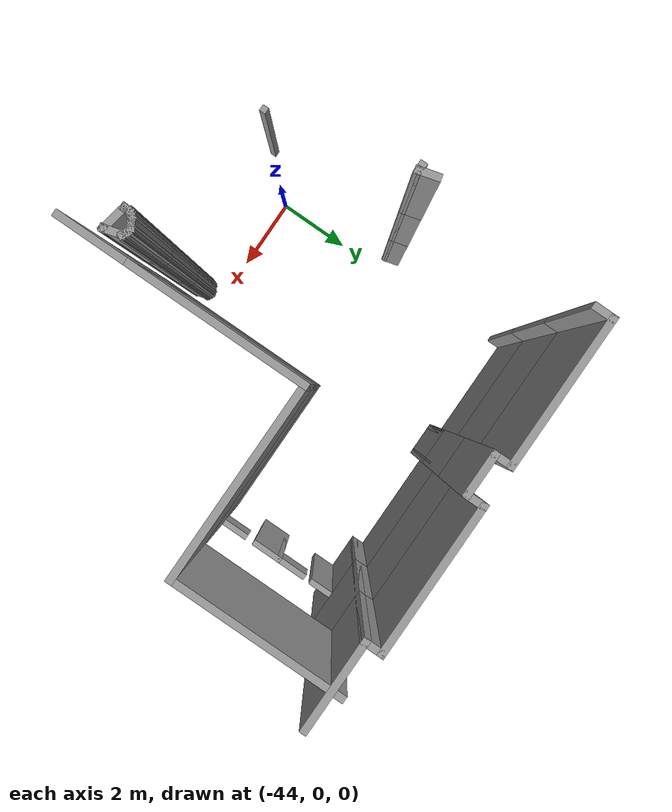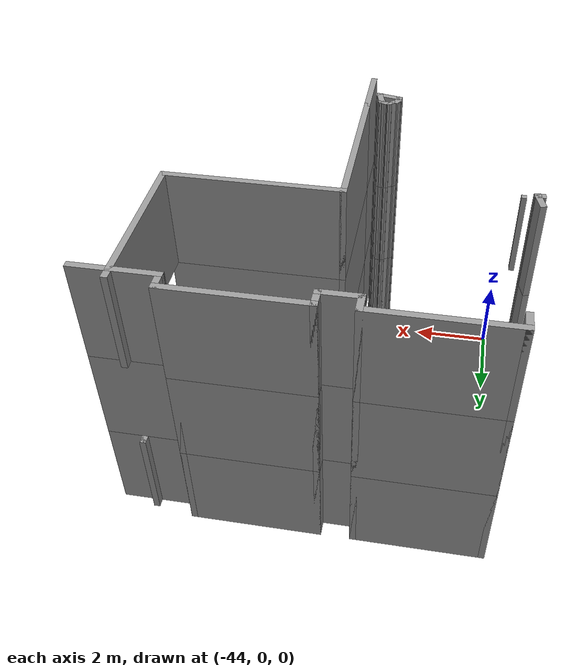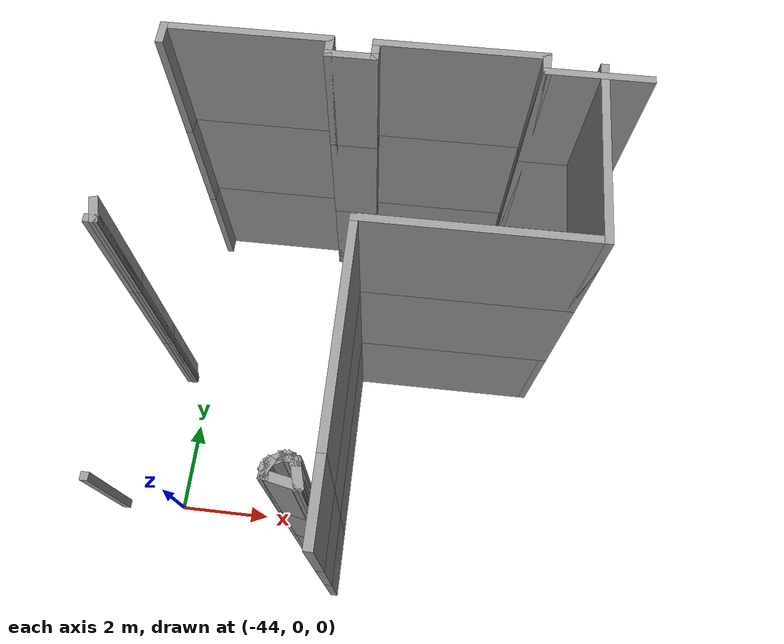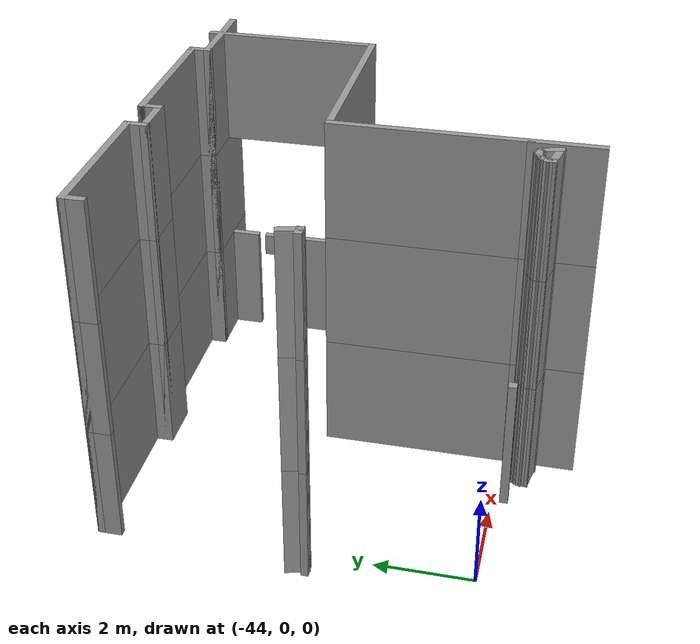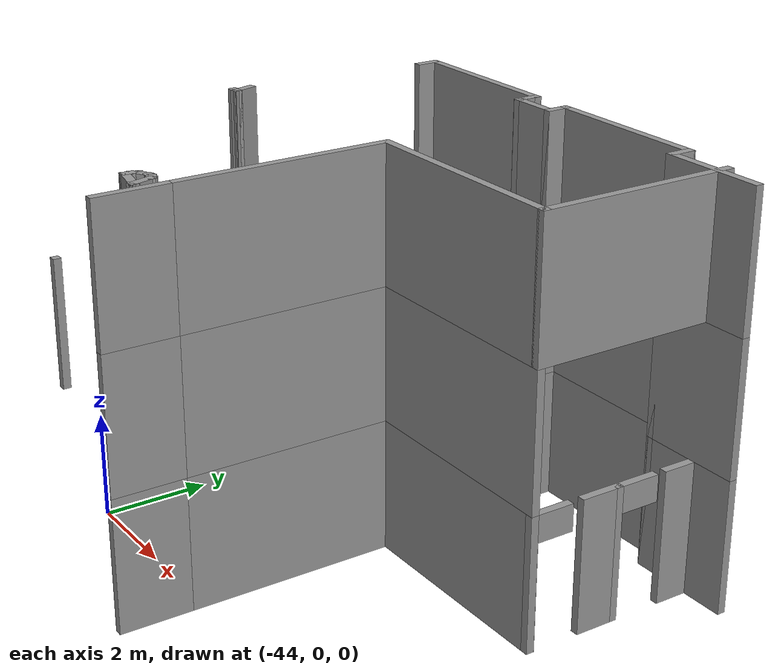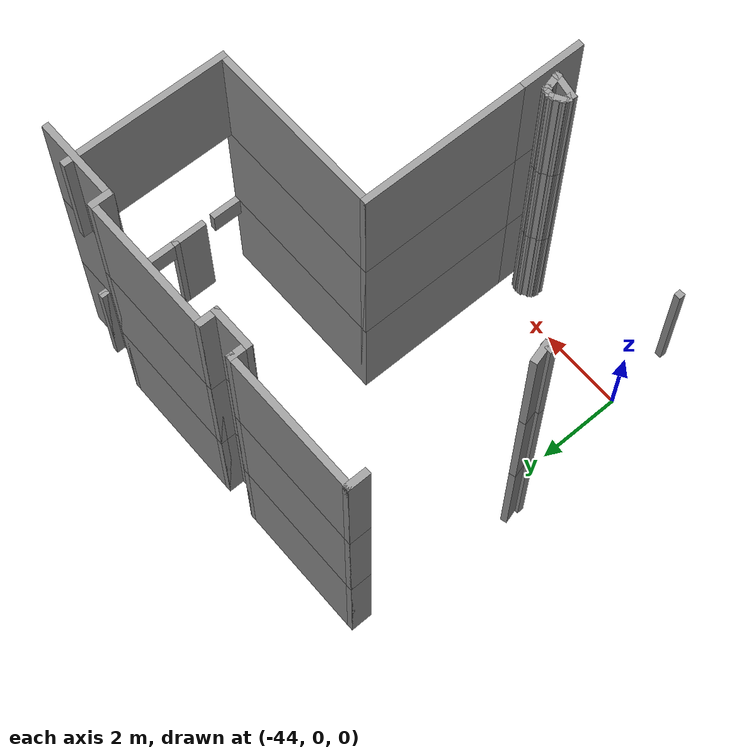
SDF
<sdf version="1.7">
 <model name="mapagazebo">
  <pose>-4.67869 9.01252 0 0 -0 0</pose>
  <link name="Wall_1006">
   <collision name="Wall_1006_Collision">
    <geometry><box><size>0.5 0.15 2.5</size></box></geometry>
    <pose>0 0 1.25 0 -0 0</pose>
   </collision>
   <visual name="Wall_1006_Visual">
    <pose>0 0 1.25 0 -0 0</pose>
    <geometry><box><size>0.5 0.15 2.5</size></box></geometry>
    <material>
     <script><uri>file://media/materials/scripts/gazebo.material</uri><name>Gazebo/Grey</name></script>
     <ambient>1 1 1 1</ambient>
    </material>
    <meta><layer>1</layer></meta>
   </visual>
   <pose>-39.7632 -5.62379 2.5 0 -0 -1.309</pose>
  </link>
  <link name="Wall_1007">
   <collision name="Wall_1007_Collision">
    <geometry><box><size>0.15 0.15 2.5</size></box></geometry>
    <pose>0 0 1.25 0 -0 0</pose>
   </collision>
   <visual name="Wall_1007_Visual">
    <pose>0 0 1.25 0 -0 0</pose>
    <geometry><box><size>0.15 0.15 2.5</size></box></geometry>
    <material>
     <script><uri>file://media/materials/scripts/gazebo.material</uri><name>Gazebo/Grey</name></script>
     <ambient>1 1 1 1</ambient>
    </material>
    <meta><layer>1</layer></meta>
   </visual>
   <pose>-39.7179 -5.79283 2.5 0 -0 0</pose>
  </link>
  <link name="Wall_1008">
   <collision name="Wall_1008_Collision">
    <geometry><box><size>0.25 0.15 2.5</size></box></geometry>
    <pose>0 0 1.25 0 -0 0</pose>
   </collision>
   <visual name="Wall_1008_Visual">
    <pose>0 0 1.25 0 -0 0</pose>
    <geometry><box><size>0.25 0.15 2.5</size></box></geometry>
    <material>
     <script><uri>file://media/materials/scripts/gazebo.material</uri><name>Gazebo/Grey</name></script>
     <ambient>1 1 1 1</ambient>
    </material>
    <meta><layer>1</layer></meta>
   </visual>
   <pose>-39.7679 -5.79283 2.5 0 -0 3.14159</pose>
  </link>
  <link name="Wall_1069">
   <collision name="Wall_1069_Collision">
    <geometry><box><size>0.25 0.15 2.5</size></box></geometry>
    <pose>0 0 1.25 0 -0 0</pose>
   </collision>
   <visual name="Wall_1069_Visual">
    <pose>0 0 1.25 0 -0 0</pose>
    <geometry><box><size>0.25 0.15 2.5</size></box></geometry>
    <material>
     <script><uri>file://media/materials/scripts/gazebo.material</uri><name>Gazebo/Grey</name></script>
     <ambient>1 1 1 1</ambient>
    </material>
    <meta><layer>1</layer></meta>
   </visual>
   <pose>-36.2911 -9.57059 2.5 0 -0 1.5708</pose>
  </link>
  <link name="Wall_1070">
   <collision name="Wall_1070_Collision">
    <geometry><box><size>0.25 0.15 2.5</size></box></geometry>
    <pose>0 0 1.25 0 -0 0</pose>
   </collision>
   <visual name="Wall_1070_Visual">
    <pose>0 0 1.25 0 -0 0</pose>
    <geometry><box><size>0.25 0.15 2.5</size></box></geometry>
    <material>
     <script><uri>file://media/materials/scripts/gazebo.material</uri><name>Gazebo/Grey</name></script>
     <ambient>1 1 1 1</ambient>
    </material>
    <meta><layer>1</layer></meta>
   </visual>
   <pose>-36.2661 -9.47729 2.5 0 -0 1.0472</pose>
  </link>
  <link name="Wall_1071">
   <collision name="Wall_1071_Collision">
    <geometry><box><size>0.25 0.15 2.5</size></box></geometry>
    <pose>0 0 1.25 0 -0 0</pose>
   </collision>
   <visual name="Wall_1071_Visual">
    <pose>0 0 1.25 0 -0 0</pose>
    <geometry><box><size>0.25 0.15 2.5</size></box></geometry>
    <material>
     <script><uri>file://media/materials/scripts/gazebo.material</uri><name>Gazebo/Grey</name></script>
     <ambient>1 1 1 1</ambient>
    </material>
    <meta><layer>1</layer></meta>
   </visual>
   <pose>-36.1978 -9.40898 2.5 0 -0 0.523599</pose>
  </link>
  <link name="Wall_1072">
   <collision name="Wall_1072_Collision">
    <geometry><box><size>0.25 0.15 2.5</size></box></geometry>
    <pose>0 0 1.25 0 -0 0</pose>
   </collision>
   <visual name="Wall_1072_Visual">
    <pose>0 0 1.25 0 -0 0</pose>
    <geometry><box><size>0.25 0.15 2.5</size></box></geometry>
    <material>
     <script><uri>file://media/materials/scripts/gazebo.material</uri><name>Gazebo/Grey</name></script>
     <ambient>1 1 1 1</ambient>
    </material>
    <meta><layer>1</layer></meta>
   </visual>
   <pose>-36.1112 -9.35898 2.5 0 -0 0.523599</pose>
  </link>
  <link name="Wall_1073">
   <collision name="Wall_1073_Collision">
    <geometry><box><size>0.25 0.15 2.5</size></box></geometry>
    <pose>0 0 1.25 0 -0 0</pose>
   </collision>
   <visual name="Wall_1073_Visual">
    <pose>0 0 1.25 0 -0 0</pose>
    <geometry><box><size>0.25 0.15 2.5</size></box></geometry>
    <material>
     <script><uri>file://media/materials/scripts/gazebo.material</uri><name>Gazebo/Grey</name></script>
     <ambient>1 1 1 1</ambient>
    </material>
    <meta><layer>1</layer></meta>
   </visual>
   <pose>-36.0179 -9.33398 2.5 0 -0 0</pose>
  </link>
  <link name="Wall_1074">
   <collision name="Wall_1074_Collision">
    <geometry><box><size>0.25 0.15 2.5</size></box></geometry>
    <pose>0 0 1.25 0 -0 0</pose>
   </collision>
   <visual name="Wall_1074_Visual">
    <pose>0 0 1.25 0 -0 0</pose>
    <geometry><box><size>0.25 0.15 2.5</size></box></geometry>
    <material>
     <script><uri>file://media/materials/scripts/gazebo.material</uri><name>Gazebo/Grey</name></script>
     <ambient>1 1 1 1</ambient>
    </material>
    <meta><layer>1</layer></meta>
   </visual>
   <pose>-35.9246 -9.35898 2.5 0 -0 -0.523599</pose>
  </link>
  <link name="Wall_1075">
   <collision name="Wall_1075_Collision">
    <geometry><box><size>0.15 0.15 2.5</size></box></geometry>
    <pose>0 0 1.25 0 -0 0</pose>
   </collision>
   <visual name="Wall_1075_Visual">
    <pose>0 0 1.25 0 -0 0</pose>
    <geometry><box><size>0.15 0.15 2.5</size></box></geometry>
    <material>
     <script><uri>file://media/materials/scripts/gazebo.material</uri><name>Gazebo/Grey</name></script>
     <ambient>1 1 1 1</ambient>
    </material>
    <meta><layer>1</layer></meta>
   </visual>
   <pose>-35.8813 -9.38398 2.5 0 -0 0</pose>
  </link>
  <link name="Wall_1076">
   <collision name="Wall_1076_Collision">
    <geometry><box><size>0.5 0.15 2.5</size></box></geometry>
    <pose>0 0 1.25 0 -0 0</pose>
   </collision>
   <visual name="Wall_1076_Visual">
    <pose>0 0 1.25 0 -0 0</pose>
    <geometry><box><size>0.5 0.15 2.5</size></box></geometry>
    <material>
     <script><uri>file://media/materials/scripts/gazebo.material</uri><name>Gazebo/Grey</name></script>
     <ambient>1 1 1 1</ambient>
    </material>
    <meta><layer>1</layer></meta>
   </visual>
   <pose>-35.836 -9.55302 2.5 0 -0 -1.309</pose>
  </link>
  <link name="Wall_1077">
   <collision name="Wall_1077_Collision">
    <geometry><box><size>0.15 0.15 2.5</size></box></geometry>
    <pose>0 0 1.25 0 -0 0</pose>
   </collision>
   <visual name="Wall_1077_Visual">
    <pose>0 0 1.25 0 -0 0</pose>
    <geometry><box><size>0.15 0.15 2.5</size></box></geometry>
    <material>
     <script><uri>file://media/materials/scripts/gazebo.material</uri><name>Gazebo/Grey</name></script>
     <ambient>1 1 1 1</ambient>
    </material>
    <meta><layer>1</layer></meta>
   </visual>
   <pose>-35.7907 -9.72206 2.5 0 -0 0</pose>
  </link>
  <link name="Wall_1078">
   <collision name="Wall_1078_Collision">
    <geometry><box><size>0.660579 0.15 2.5</size></box></geometry>
    <pose>0 0 1.25 0 -0 0</pose>
   </collision>
   <visual name="Wall_1078_Visual">
    <pose>0 0 1.25 0 -0 0</pose>
    <geometry><box><size>0.660579 0.15 2.5</size></box></geometry>
    <material>
     <script><uri>file://media/materials/scripts/gazebo.material</uri><name>Gazebo/Grey</name></script>
     <ambient>1 1 1 1</ambient>
    </material>
    <meta><layer>1</layer></meta>
   </visual>
   <pose>-36.0409 -9.67132 2.5 0 -0 2.94152</pose>
  </link>
  <link name="Wall_1079">
   <collision name="Wall_1079_Collision">
    <geometry><box><size>0.15 0.15 2.5</size></box></geometry>
    <pose>0 0 1.25 0 -0 0</pose>
   </collision>
   <visual name="Wall_1079_Visual">
    <pose>0 0 1.25 0 -0 0</pose>
    <geometry><box><size>0.15 0.15 2.5</size></box></geometry>
    <material>
     <script><uri>file://media/materials/scripts/gazebo.material</uri><name>Gazebo/Grey</name></script>
     <ambient>1 1 1 1</ambient>
    </material>
    <meta><layer>1</layer></meta>
   </visual>
   <pose>-36.2911 -9.62059 2.5 0 -0 0</pose>
  </link>
  <link name="Wall_126">
   <collision name="Wall_126_Collision">
    <geometry><box><size>0.5 0.15 2.5</size></box></geometry>
    <pose>0 0 1.25 0 -0 0</pose>
   </collision>
   <visual name="Wall_126_Visual">
    <pose>0 0 1.25 0 -0 0</pose>
    <geometry><box><size>0.5 0.15 2.5</size></box></geometry>
    <material>
     <script><uri>file://media/materials/scripts/gazebo.material</uri><name>Gazebo/Grey</name></script>
     <ambient>1 1 1 1</ambient>
    </material>
    <meta><layer>0</layer></meta>
   </visual>
   <pose>-39.5129 -1.73169 0 0 -0 1.5708</pose>
  </link>
  <link name="Wall_127">
   <collision name="Wall_127_Collision">
    <geometry><box><size>3.25 0.15 2.5</size></box></geometry>
    <pose>0 0 1.25 0 -0 0</pose>
   </collision>
   <visual name="Wall_127_Visual">
    <pose>0 0 1.25 0 -0 0</pose>
    <geometry><box><size>3.25 0.15 2.5</size></box></geometry>
    <material>
     <script><uri>file://media/materials/scripts/gazebo.material</uri><name>Gazebo/Grey</name></script>
     <ambient>1 1 1 1</ambient>
    </material>
    <meta><layer>0</layer></meta>
   </visual>
   <pose>-37.9629 -1.55669 0 0 -0 0</pose>
  </link>
  <link name="Wall_130">
   <collision name="Wall_130_Collision">
    <geometry><box><size>0.5 0.15 2.5</size></box></geometry>
    <pose>0 0 1.25 0 -0 0</pose>
   </collision>
   <visual name="Wall_130_Visual">
    <pose>0 0 1.25 0 -0 0</pose>
    <geometry><box><size>0.5 0.15 2.5</size></box></geometry>
    <material>
     <script><uri>file://media/materials/scripts/gazebo.material</uri><name>Gazebo/Grey</name></script>
     <ambient>1 1 1 1</ambient>
    </material>
    <meta><layer>0</layer></meta>
   </visual>
   <pose>-36.4129 -1.73169 0 0 -0 -1.5708</pose>
  </link>
  <link name="Wall_131">
   <collision name="Wall_131_Collision">
    <geometry><box><size>1 0.15 2.5</size></box></geometry>
    <pose>0 0 1.25 0 -0 0</pose>
   </collision>
   <visual name="Wall_131_Visual">
    <pose>0 0 1.25 0 -0 0</pose>
    <geometry><box><size>1 0.15 2.5</size></box></geometry>
    <material>
     <script><uri>file://media/materials/scripts/gazebo.material</uri><name>Gazebo/Grey</name></script>
     <ambient>1 1 1 1</ambient>
    </material>
    <meta><layer>0</layer></meta>
   </visual>
   <pose>-35.9879 -1.90669 0 0 -0 0</pose>
  </link>
  <link name="Wall_132">
   <collision name="Wall_132_Collision">
    <geometry><box><size>0.5 0.15 2.5</size></box></geometry>
    <pose>0 0 1.25 0 -0 0</pose>
   </collision>
   <visual name="Wall_132_Visual">
    <pose>0 0 1.25 0 -0 0</pose>
    <geometry><box><size>0.5 0.15 2.5</size></box></geometry>
    <material>
     <script><uri>file://media/materials/scripts/gazebo.material</uri><name>Gazebo/Grey</name></script>
     <ambient>1 1 1 1</ambient>
    </material>
    <meta><layer>0</layer></meta>
   </visual>
   <pose>-35.5629 -1.73169 0 0 -0 1.5708</pose>
  </link>
  <link name="Wall_133">
   <collision name="Wall_133_Collision">
    <geometry><box><size>3.25 0.15 2.5</size></box></geometry>
    <pose>0 0 1.25 0 -0 0</pose>
   </collision>
   <visual name="Wall_133_Visual">
    <pose>0 0 1.25 0 -0 0</pose>
    <geometry><box><size>3.25 0.15 2.5</size></box></geometry>
    <material>
     <script><uri>file://media/materials/scripts/gazebo.material</uri><name>Gazebo/Grey</name></script>
     <ambient>1 1 1 1</ambient>
    </material>
    <meta><layer>0</layer></meta>
   </visual>
   <pose>-34.0129 -1.55669 0 0 -0 0</pose>
  </link>
  <link name="Wall_135">
   <collision name="Wall_135_Collision">
    <geometry><box><size>0.5 0.15 2.5</size></box></geometry>
    <pose>0 0 1.25 0 -0 0</pose>
   </collision>
   <visual name="Wall_135_Visual">
    <pose>0 0 1.25 0 -0 0</pose>
    <geometry><box><size>0.5 0.15 2.5</size></box></geometry>
    <material>
     <script><uri>file://media/materials/scripts/gazebo.material</uri><name>Gazebo/Grey</name></script>
     <ambient>1 1 1 1</ambient>
    </material>
    <meta><layer>0</layer></meta>
   </visual>
   <pose>-32.4629 -1.73169 0 0 -0 -1.5708</pose>
  </link>
  <link name="Wall_136">
   <collision name="Wall_136_Collision">
    <geometry><box><size>2 0.15 2.5</size></box></geometry>
    <pose>0 0 1.25 0 -0 0</pose>
   </collision>
   <visual name="Wall_136_Visual">
    <pose>0 0 1.25 0 -0 0</pose>
    <geometry><box><size>2 0.15 2.5</size></box></geometry>
    <material>
     <script><uri>file://media/materials/scripts/gazebo.material</uri><name>Gazebo/Grey</name></script>
     <ambient>1 1 1 1</ambient>
    </material>
    <meta><layer>0</layer></meta>
   </visual>
   <pose>-31.5379 -1.90669 0 0 -0 0</pose>
  </link>
  <link name="Wall_1494">
   <collision name="Wall_1494_Collision">
    <geometry><box><size>0.5 0.15 2.5</size></box></geometry>
    <pose>0 0 1.25 0 -0 0</pose>
   </collision>
   <visual name="Wall_1494_Visual">
    <pose>0 0 1.25 0 -0 0</pose>
    <geometry><box><size>0.5 0.15 2.5</size></box></geometry>
    <material>
     <script><uri>file://media/materials/scripts/gazebo.material</uri><name>Gazebo/Grey</name></script>
     <ambient>1 1 1 1</ambient>
    </material>
    <meta><layer>2</layer></meta>
   </visual>
   <pose>-39.5129 -1.73169 5 0 -0 1.5708</pose>
  </link>
  <link name="Wall_1495">
   <collision name="Wall_1495_Collision">
    <geometry><box><size>3.25 0.15 2.5</size></box></geometry>
    <pose>0 0 1.25 0 -0 0</pose>
   </collision>
   <visual name="Wall_1495_Visual">
    <pose>0 0 1.25 0 -0 0</pose>
    <geometry><box><size>3.25 0.15 2.5</size></box></geometry>
    <material>
     <script><uri>file://media/materials/scripts/gazebo.material</uri><name>Gazebo/Grey</name></script>
     <ambient>1 1 1 1</ambient>
    </material>
    <meta><layer>2</layer></meta>
   </visual>
   <pose>-37.9629 -1.55669 5 0 -0 0</pose>
  </link>
  <link name="Wall_1496">
   <collision name="Wall_1496_Collision">
    <geometry><box><size>0.5 0.15 2.5</size></box></geometry>
    <pose>0 0 1.25 0 -0 0</pose>
   </collision>
   <visual name="Wall_1496_Visual">
    <pose>0 0 1.25 0 -0 0</pose>
    <geometry><box><size>0.5 0.15 2.5</size></box></geometry>
    <material>
     <script><uri>file://media/materials/scripts/gazebo.material</uri><name>Gazebo/Grey</name></script>
     <ambient>1 1 1 1</ambient>
    </material>
    <meta><layer>2</layer></meta>
   </visual>
   <pose>-36.4129 -1.73169 5 0 -0 -1.5708</pose>
  </link>
  <link name="Wall_1497">
   <collision name="Wall_1497_Collision">
    <geometry><box><size>1 0.15 2.5</size></box></geometry>
    <pose>0 0 1.25 0 -0 0</pose>
   </collision>
   <visual name="Wall_1497_Visual">
    <pose>0 0 1.25 0 -0 0</pose>
    <geometry><box><size>1 0.15 2.5</size></box></geometry>
    <material>
     <script><uri>file://media/materials/scripts/gazebo.material</uri><name>Gazebo/Grey</name></script>
     <ambient>1 1 1 1</ambient>
    </material>
    <meta><layer>2</layer></meta>
   </visual>
   <pose>-35.9879 -1.90669 5 0 -0 0</pose>
  </link>
  <link name="Wall_1498">
   <collision name="Wall_1498_Collision">
    <geometry><box><size>0.5 0.15 2.5</size></box></geometry>
    <pose>0 0 1.25 0 -0 0</pose>
   </collision>
   <visual name="Wall_1498_Visual">
    <pose>0 0 1.25 0 -0 0</pose>
    <geometry><box><size>0.5 0.15 2.5</size></box></geometry>
    <material>
     <script><uri>file://media/materials/scripts/gazebo.material</uri><name>Gazebo/Grey</name></script>
     <ambient>1 1 1 1</ambient>
    </material>
    <meta><layer>2</layer></meta>
   </visual>
   <pose>-35.5629 -1.73169 5 0 -0 1.5708</pose>
  </link>
  <link name="Wall_1499">
   <collision name="Wall_1499_Collision">
    <geometry><box><size>3.25 0.15 2.5</size></box></geometry>
    <pose>0 0 1.25 0 -0 0</pose>
   </collision>
   <visual name="Wall_1499_Visual">
    <pose>0 0 1.25 0 -0 0</pose>
    <geometry><box><size>3.25 0.15 2.5</size></box></geometry>
    <material>
     <script><uri>file://media/materials/scripts/gazebo.material</uri><name>Gazebo/Grey</name></script>
     <ambient>1 1 1 1</ambient>
    </material>
    <meta><layer>2</layer></meta>
   </visual>
   <pose>-34.0129 -1.55669 5 0 -0 0</pose>
  </link>
  <link name="Wall_1500">
   <collision name="Wall_1500_Collision">
    <geometry><box><size>0.5 0.15 2.5</size></box></geometry>
    <pose>0 0 1.25 0 -0 0</pose>
   </collision>
   <visual name="Wall_1500_Visual">
    <pose>0 0 1.25 0 -0 0</pose>
    <geometry><box><size>0.5 0.15 2.5</size></box></geometry>
    <material>
     <script><uri>file://media/materials/scripts/gazebo.material</uri><name>Gazebo/Grey</name></script>
     <ambient>1 1 1 1</ambient>
    </material>
    <meta><layer>2</layer></meta>
   </visual>
   <pose>-32.4629 -1.73169 5 0 -0 -1.5708</pose>
  </link>
  <link name="Wall_1501">
   <collision name="Wall_1501_Collision">
    <geometry><box><size>2 0.15 2.5</size></box></geometry>
    <pose>0 0 1.25 0 -0 0</pose>
   </collision>
   <visual name="Wall_1501_Visual">
    <pose>0 0 1.25 0 -0 0</pose>
    <geometry><box><size>2 0.15 2.5</size></box></geometry>
    <material>
     <script><uri>file://media/materials/scripts/gazebo.material</uri><name>Gazebo/Grey</name></script>
     <ambient>1 1 1 1</ambient>
    </material>
    <meta><layer>2</layer></meta>
   </visual>
   <pose>-31.5379 -1.90669 5 0 -0 0</pose>
  </link>
  <link name="Wall_151">
   <collision name="Wall_151_Collision">
    <geometry><box><size>1.5 0.15 2.5</size></box></geometry>
    <pose>0 0 1.25 0 -0 0</pose>
   </collision>
   <visual name="Wall_151_Visual">
    <pose>0 0 1.25 0 -0 0</pose>
    <geometry><box><size>1.5 0.15 2.5</size></box></geometry>
    <material>
     <script><uri>file://media/materials/scripts/gazebo.material</uri><name>Gazebo/Grey</name></script>
     <ambient>1 1 1 1</ambient>
    </material>
    <meta><layer>0</layer></meta>
   </visual>
   <pose>-35.5346 -9.83147 0 0 -0 1.5708</pose>
  </link>
  <link name="Wall_1513">
   <collision name="Wall_1513_Collision">
    <geometry><box><size>1.5 0.15 2.5</size></box></geometry>
    <pose>0 0 1.25 0 -0 0</pose>
   </collision>
   <visual name="Wall_1513_Visual">
    <pose>0 0 1.25 0 -0 0</pose>
    <geometry><box><size>1.5 0.15 2.5</size></box></geometry>
    <material>
     <script><uri>file://media/materials/scripts/gazebo.material</uri><name>Gazebo/Grey</name></script>
     <ambient>1 1 1 1</ambient>
    </material>
    <meta><layer>2</layer></meta>
   </visual>
   <pose>-35.5346 -9.83147 5 0 -0 1.5708</pose>
  </link>
  <link name="Wall_1514">
   <collision name="Wall_1514_Collision">
    <geometry><box><size>4 0.15 2.5</size></box></geometry>
    <pose>0 0 1.25 0 -0 0</pose>
   </collision>
   <visual name="Wall_1514_Visual">
    <pose>0 0 1.25 0 -0 0</pose>
    <geometry><box><size>4 0.15 2.5</size></box></geometry>
    <material>
     <script><uri>file://media/materials/scripts/gazebo.material</uri><name>Gazebo/Grey</name></script>
     <ambient>1 1 1 1</ambient>
    </material>
    <meta><layer>2</layer></meta>
   </visual>
   <pose>-35.5346 -7.23147 5 0 -0 1.5708</pose>
  </link>
  <link name="Wall_1515">
   <collision name="Wall_1515_Collision">
    <geometry><box><size>4.25 0.15 2.5</size></box></geometry>
    <pose>0 0 1.25 0 -0 0</pose>
   </collision>
   <visual name="Wall_1515_Visual">
    <pose>0 0 1.25 0 -0 0</pose>
    <geometry><box><size>4.25 0.15 2.5</size></box></geometry>
    <material>
     <script><uri>file://media/materials/scripts/gazebo.material</uri><name>Gazebo/Grey</name></script>
     <ambient>1 1 1 1</ambient>
    </material>
    <meta><layer>2</layer></meta>
   </visual>
   <pose>-33.4846 -5.30647 5 0 -0 0</pose>
  </link>
  <link name="Wall_1516">
   <collision name="Wall_1516_Collision">
    <geometry><box><size>3.75 0.15 2.5</size></box></geometry>
    <pose>0 0 1.25 0 -0 0</pose>
   </collision>
   <visual name="Wall_1516_Visual">
    <pose>0 0 1.25 0 -0 0</pose>
    <geometry><box><size>3.75 0.15 2.5</size></box></geometry>
    <material>
     <script><uri>file://media/materials/scripts/gazebo.material</uri><name>Gazebo/Grey</name></script>
     <ambient>1 1 1 1</ambient>
    </material>
    <meta><layer>2</layer></meta>
   </visual>
   <pose>-31.4346 -3.50647 5 0 -0 1.5708</pose>
  </link>
  <link name="Wall_153">
   <collision name="Wall_153_Collision">
    <geometry><box><size>4 0.15 2.5</size></box></geometry>
    <pose>0 0 1.25 0 -0 0</pose>
   </collision>
   <visual name="Wall_153_Visual">
    <pose>0 0 1.25 0 -0 0</pose>
    <geometry><box><size>4 0.15 2.5</size></box></geometry>
    <material>
     <script><uri>file://media/materials/scripts/gazebo.material</uri><name>Gazebo/Grey</name></script>
     <ambient>1 1 1 1</ambient>
    </material>
    <meta><layer>0</layer></meta>
   </visual>
   <pose>-35.5346 -7.23147 0 0 -0 1.5708</pose>
  </link>
  <link name="Wall_154">
   <collision name="Wall_154_Collision">
    <geometry><box><size>4.25 0.15 2.5</size></box></geometry>
    <pose>0 0 1.25 0 -0 0</pose>
   </collision>
   <visual name="Wall_154_Visual">
    <pose>0 0 1.25 0 -0 0</pose>
    <geometry><box><size>4.25 0.15 2.5</size></box></geometry>
    <material>
     <script><uri>file://media/materials/scripts/gazebo.material</uri><name>Gazebo/Grey</name></script>
     <ambient>1 1 1 1</ambient>
    </material>
    <meta><layer>0</layer></meta>
   </visual>
   <pose>-33.4846 -5.30647 0 0 -0 0</pose>
  </link>
  <link name="Wall_156">
   <pose>-31.4346 -3.50647 0 0 -0 1.5708</pose>
   <visual name="Wall_156_Visual_0">
    <pose>-1.80205 0 1.25 0 -0 0</pose>
    <geometry><box><size>0.145904 0.15 2.5</size></box></geometry>
    <material>
     <script><uri>file://media/materials/scripts/gazebo.material</uri><name>Gazebo/Grey</name></script>
     <ambient>1 1 1 1</ambient>
    </material>
    <meta><layer>0</layer></meta>
   </visual>
   <collision name="Wall_156_Collision_0">
    <geometry><box><size>0.145904 0.15 2.5</size></box></geometry>
    <pose>-1.80205 0 1.25 0 -0 0</pose>
   </collision>
   <visual name="Wall_156_Visual_1">
    <pose>-0.41396 0 1.25 0 -0 0</pose>
    <geometry><box><size>0.830273 0.15 2.5</size></box></geometry>
    <material>
     <script><uri>file://media/materials/scripts/gazebo.material</uri><name>Gazebo/Grey</name></script>
     <ambient>1 1 1 1</ambient>
    </material>
    <meta><layer>0</layer></meta>
   </visual>
   <collision name="Wall_156_Collision_1">
    <geometry><box><size>0.830273 0.15 2.5</size></box></geometry>
    <pose>-0.41396 0 1.25 0 -0 0</pose>
   </collision>
   <visual name="Wall_156_Visual_2">
    <pose>-0.065985 0 1.25 0 -0 0</pose>
    <geometry><box><size>0.134324 0.15 2.5</size></box></geometry>
    <material>
     <script><uri>file://media/materials/scripts/gazebo.material</uri><name>Gazebo/Grey</name></script>
     <ambient>1 1 1 1</ambient>
    </material>
    <meta><layer>0</layer></meta>
   </visual>
   <collision name="Wall_156_Collision_2">
    <geometry><box><size>0.134324 0.15 2.5</size></box></geometry>
    <pose>-0.065985 0 1.25 0 -0 0</pose>
   </collision>
   <visual name="Wall_156_Visual_3">
    <pose>1.38809 0 1.25 0 -0 0</pose>
    <geometry><box><size>0.973823 0.15 2.5</size></box></geometry>
    <material>
     <script><uri>file://media/materials/scripts/gazebo.material</uri><name>Gazebo/Grey</name></script>
     <ambient>1 1 1 1</ambient>
    </material>
    <meta><layer>0</layer></meta>
   </visual>
   <collision name="Wall_156_Collision_3">
    <geometry><box><size>0.973823 0.15 2.5</size></box></geometry>
    <pose>1.38809 0 1.25 0 -0 0</pose>
   </collision>
   <visual name="Wall_156_Visual_4">
    <pose>1.75791 0 1.25 0 -0 0</pose>
    <geometry><box><size>0.234171 0.15 2.5</size></box></geometry>
    <material>
     <script><uri>file://media/materials/scripts/gazebo.material</uri><name>Gazebo/Grey</name></script>
     <ambient>1 1 1 1</ambient>
    </material>
    <meta><layer>0</layer></meta>
   </visual>
   <collision name="Wall_156_Collision_4">
    <geometry><box><size>0.234171 0.15 2.5</size></box></geometry>
    <pose>1.75791 0 1.25 0 -0 0</pose>
   </collision>
   <visual name="Wall_156_Visual_5">
    <pose>-1.38112 0 2.25 0 -0 0</pose>
    <geometry><box><size>0.695949 0.15 0.5</size></box></geometry>
    <material>
     <script><uri>file://media/materials/scripts/gazebo.material</uri><name>Gazebo/Grey</name></script>
     <ambient>1 1 1 1</ambient>
    </material>
    <meta><layer>0</layer></meta>
   </visual>
   <collision name="Wall_156_Collision_5">
    <geometry><box><size>0.695949 0.15 0.5</size></box></geometry>
    <pose>-1.38112 0 2.25 0 -0 0</pose>
   </collision>
   <visual name="Wall_156_Visual_6">
    <pose>0.371003 0 2.25 0 -0 0</pose>
    <geometry><box><size>0.739653 0.15 0.5</size></box></geometry>
    <material>
     <script><uri>file://media/materials/scripts/gazebo.material</uri><name>Gazebo/Grey</name></script>
     <ambient>1 1 1 1</ambient>
    </material>
    <meta><layer>0</layer></meta>
   </visual>
   <collision name="Wall_156_Collision_6">
    <geometry><box><size>0.739653 0.15 0.5</size></box></geometry>
    <pose>0.371003 0 2.25 0 -0 0</pose>
   </collision>
   <visual name="Wall_156_Visual_7">
    <pose>0.371003 0 2.25 0 -0 0</pose>
    <geometry><box><size>0.739653 0.15 0.5</size></box></geometry>
    <material>
     <script><uri>file://media/materials/scripts/gazebo.material</uri><name>Gazebo/Grey</name></script>
     <ambient>1 1 1 1</ambient>
    </material>
    <meta><layer>0</layer></meta>
   </visual>
   <collision name="Wall_156_Collision_7">
    <geometry><box><size>0.739653 0.15 0.5</size></box></geometry>
    <pose>0.371003 0 2.25 0 -0 0</pose>
   </collision>
  </link>
  <link name="Wall_1630">
   <collision name="Wall_1630_Collision">
    <geometry><box><size>0.5 0.15 2.5</size></box></geometry>
    <pose>0 0 1.25 0 -0 0</pose>
   </collision>
   <visual name="Wall_1630_Visual">
    <pose>0 0 1.25 0 -0 0</pose>
    <geometry><box><size>0.5 0.15 2.5</size></box></geometry>
    <material>
     <script><uri>file://media/materials/scripts/gazebo.material</uri><name>Gazebo/Grey</name></script>
     <ambient>1 1 1 1</ambient>
    </material>
    <meta><layer>2</layer></meta>
   </visual>
   <pose>-39.7632 -5.62379 5 0 -0 -1.309</pose>
  </link>
  <link name="Wall_1631">
   <collision name="Wall_1631_Collision">
    <geometry><box><size>0.15 0.15 2.5</size></box></geometry>
    <pose>0 0 1.25 0 -0 0</pose>
   </collision>
   <visual name="Wall_1631_Visual">
    <pose>0 0 1.25 0 -0 0</pose>
    <geometry><box><size>0.15 0.15 2.5</size></box></geometry>
    <material>
     <script><uri>file://media/materials/scripts/gazebo.material</uri><name>Gazebo/Grey</name></script>
     <ambient>1 1 1 1</ambient>
    </material>
    <meta><layer>2</layer></meta>
   </visual>
   <pose>-39.7179 -5.79283 5 0 -0 0</pose>
  </link>
  <link name="Wall_1632">
   <collision name="Wall_1632_Collision">
    <geometry><box><size>0.25 0.15 2.5</size></box></geometry>
    <pose>0 0 1.25 0 -0 0</pose>
   </collision>
   <visual name="Wall_1632_Visual">
    <pose>0 0 1.25 0 -0 0</pose>
    <geometry><box><size>0.25 0.15 2.5</size></box></geometry>
    <material>
     <script><uri>file://media/materials/scripts/gazebo.material</uri><name>Gazebo/Grey</name></script>
     <ambient>1 1 1 1</ambient>
    </material>
    <meta><layer>2</layer></meta>
   </visual>
   <pose>-39.7679 -5.79283 5 0 -0 3.14159</pose>
  </link>
  <link name="Wall_1693">
   <collision name="Wall_1693_Collision">
    <geometry><box><size>0.25 0.15 2.5</size></box></geometry>
    <pose>0 0 1.25 0 -0 0</pose>
   </collision>
   <visual name="Wall_1693_Visual">
    <pose>0 0 1.25 0 -0 0</pose>
    <geometry><box><size>0.25 0.15 2.5</size></box></geometry>
    <material>
     <script><uri>file://media/materials/scripts/gazebo.material</uri><name>Gazebo/Grey</name></script>
     <ambient>1 1 1 1</ambient>
    </material>
    <meta><layer>2</layer></meta>
   </visual>
   <pose>-36.2911 -9.57059 5 0 -0 1.5708</pose>
  </link>
  <link name="Wall_1694">
   <collision name="Wall_1694_Collision">
    <geometry><box><size>0.25 0.15 2.5</size></box></geometry>
    <pose>0 0 1.25 0 -0 0</pose>
   </collision>
   <visual name="Wall_1694_Visual">
    <pose>0 0 1.25 0 -0 0</pose>
    <geometry><box><size>0.25 0.15 2.5</size></box></geometry>
    <material>
     <script><uri>file://media/materials/scripts/gazebo.material</uri><name>Gazebo/Grey</name></script>
     <ambient>1 1 1 1</ambient>
    </material>
    <meta><layer>2</layer></meta>
   </visual>
   <pose>-36.2661 -9.47729 5 0 -0 1.0472</pose>
  </link>
  <link name="Wall_1695">
   <collision name="Wall_1695_Collision">
    <geometry><box><size>0.25 0.15 2.5</size></box></geometry>
    <pose>0 0 1.25 0 -0 0</pose>
   </collision>
   <visual name="Wall_1695_Visual">
    <pose>0 0 1.25 0 -0 0</pose>
    <geometry><box><size>0.25 0.15 2.5</size></box></geometry>
    <material>
     <script><uri>file://media/materials/scripts/gazebo.material</uri><name>Gazebo/Grey</name></script>
     <ambient>1 1 1 1</ambient>
    </material>
    <meta><layer>2</layer></meta>
   </visual>
   <pose>-36.1978 -9.40898 5 0 -0 0.523599</pose>
  </link>
  <link name="Wall_1696">
   <collision name="Wall_1696_Collision">
    <geometry><box><size>0.25 0.15 2.5</size></box></geometry>
    <pose>0 0 1.25 0 -0 0</pose>
   </collision>
   <visual name="Wall_1696_Visual">
    <pose>0 0 1.25 0 -0 0</pose>
    <geometry><box><size>0.25 0.15 2.5</size></box></geometry>
    <material>
     <script><uri>file://media/materials/scripts/gazebo.material</uri><name>Gazebo/Grey</name></script>
     <ambient>1 1 1 1</ambient>
    </material>
    <meta><layer>2</layer></meta>
   </visual>
   <pose>-36.1112 -9.35898 5 0 -0 0.523599</pose>
  </link>
  <link name="Wall_1697">
   <collision name="Wall_1697_Collision">
    <geometry><box><size>0.25 0.15 2.5</size></box></geometry>
    <pose>0 0 1.25 0 -0 0</pose>
   </collision>
   <visual name="Wall_1697_Visual">
    <pose>0 0 1.25 0 -0 0</pose>
    <geometry><box><size>0.25 0.15 2.5</size></box></geometry>
    <material>
     <script><uri>file://media/materials/scripts/gazebo.material</uri><name>Gazebo/Grey</name></script>
     <ambient>1 1 1 1</ambient>
    </material>
    <meta><layer>2</layer></meta>
   </visual>
   <pose>-36.0179 -9.33398 5 0 -0 0</pose>
  </link>
  <link name="Wall_1698">
   <collision name="Wall_1698_Collision">
    <geometry><box><size>0.25 0.15 2.5</size></box></geometry>
    <pose>0 0 1.25 0 -0 0</pose>
   </collision>
   <visual name="Wall_1698_Visual">
    <pose>0 0 1.25 0 -0 0</pose>
    <geometry><box><size>0.25 0.15 2.5</size></box></geometry>
    <material>
     <script><uri>file://media/materials/scripts/gazebo.material</uri><name>Gazebo/Grey</name></script>
     <ambient>1 1 1 1</ambient>
    </material>
    <meta><layer>2</layer></meta>
   </visual>
   <pose>-35.9246 -9.35898 5 0 -0 -0.523599</pose>
  </link>
  <link name="Wall_1699">
   <collision name="Wall_1699_Collision">
    <geometry><box><size>0.15 0.15 2.5</size></box></geometry>
    <pose>0 0 1.25 0 -0 0</pose>
   </collision>
   <visual name="Wall_1699_Visual">
    <pose>0 0 1.25 0 -0 0</pose>
    <geometry><box><size>0.15 0.15 2.5</size></box></geometry>
    <material>
     <script><uri>file://media/materials/scripts/gazebo.material</uri><name>Gazebo/Grey</name></script>
     <ambient>1 1 1 1</ambient>
    </material>
    <meta><layer>2</layer></meta>
   </visual>
   <pose>-35.8813 -9.38398 5 0 -0 0</pose>
  </link>
  <link name="Wall_1700">
   <collision name="Wall_1700_Collision">
    <geometry><box><size>0.5 0.15 2.5</size></box></geometry>
    <pose>0 0 1.25 0 -0 0</pose>
   </collision>
   <visual name="Wall_1700_Visual">
    <pose>0 0 1.25 0 -0 0</pose>
    <geometry><box><size>0.5 0.15 2.5</size></box></geometry>
    <material>
     <script><uri>file://media/materials/scripts/gazebo.material</uri><name>Gazebo/Grey</name></script>
     <ambient>1 1 1 1</ambient>
    </material>
    <meta><layer>2</layer></meta>
   </visual>
   <pose>-35.836 -9.55302 5 0 -0 -1.309</pose>
  </link>
  <link name="Wall_1701">
   <collision name="Wall_1701_Collision">
    <geometry><box><size>0.15 0.15 2.5</size></box></geometry>
    <pose>0 0 1.25 0 -0 0</pose>
   </collision>
   <visual name="Wall_1701_Visual">
    <pose>0 0 1.25 0 -0 0</pose>
    <geometry><box><size>0.15 0.15 2.5</size></box></geometry>
    <material>
     <script><uri>file://media/materials/scripts/gazebo.material</uri><name>Gazebo/Grey</name></script>
     <ambient>1 1 1 1</ambient>
    </material>
    <meta><layer>2</layer></meta>
   </visual>
   <pose>-35.7907 -9.72206 5 0 -0 0</pose>
  </link>
  <link name="Wall_1702">
   <collision name="Wall_1702_Collision">
    <geometry><box><size>0.660579 0.15 2.5</size></box></geometry>
    <pose>0 0 1.25 0 -0 0</pose>
   </collision>
   <visual name="Wall_1702_Visual">
    <pose>0 0 1.25 0 -0 0</pose>
    <geometry><box><size>0.660579 0.15 2.5</size></box></geometry>
    <material>
     <script><uri>file://media/materials/scripts/gazebo.material</uri><name>Gazebo/Grey</name></script>
     <ambient>1 1 1 1</ambient>
    </material>
    <meta><layer>2</layer></meta>
   </visual>
   <pose>-36.0409 -9.67132 5 0 -0 2.94152</pose>
  </link>
  <link name="Wall_1703">
   <collision name="Wall_1703_Collision">
    <geometry><box><size>0.15 0.15 2.5</size></box></geometry>
    <pose>0 0 1.25 0 -0 0</pose>
   </collision>
   <visual name="Wall_1703_Visual">
    <pose>0 0 1.25 0 -0 0</pose>
    <geometry><box><size>0.15 0.15 2.5</size></box></geometry>
    <material>
     <script><uri>file://media/materials/scripts/gazebo.material</uri><name>Gazebo/Grey</name></script>
     <ambient>1 1 1 1</ambient>
    </material>
    <meta><layer>2</layer></meta>
   </visual>
   <pose>-36.2911 -9.62059 5 0 -0 0</pose>
  </link>
  <link name="Wall_292">
   <collision name="Wall_292_Collision">
    <geometry><box><size>0.5 0.15 2.5</size></box></geometry>
    <pose>0 0 1.25 0 -0 0</pose>
   </collision>
   <visual name="Wall_292_Visual">
    <pose>0 0 1.25 0 -0 0</pose>
    <geometry><box><size>0.5 0.15 2.5</size></box></geometry>
    <material>
     <script><uri>file://media/materials/scripts/gazebo.material</uri><name>Gazebo/Grey</name></script>
     <ambient>1 1 1 1</ambient>
    </material>
    <meta><layer>0</layer></meta>
   </visual>
   <pose>-39.7632 -5.62379 0 0 -0 -1.309</pose>
  </link>
  <link name="Wall_293">
   <collision name="Wall_293_Collision">
    <geometry><box><size>0.15 0.15 2.5</size></box></geometry>
    <pose>0 0 1.25 0 -0 0</pose>
   </collision>
   <visual name="Wall_293_Visual">
    <pose>0 0 1.25 0 -0 0</pose>
    <geometry><box><size>0.15 0.15 2.5</size></box></geometry>
    <material>
     <script><uri>file://media/materials/scripts/gazebo.material</uri><name>Gazebo/Grey</name></script>
     <ambient>1 1 1 1</ambient>
    </material>
    <meta><layer>0</layer></meta>
   </visual>
   <pose>-39.7179 -5.79283 0 0 -0 0</pose>
  </link>
  <link name="Wall_294">
   <collision name="Wall_294_Collision">
    <geometry><box><size>0.25 0.15 2.5</size></box></geometry>
    <pose>0 0 1.25 0 -0 0</pose>
   </collision>
   <visual name="Wall_294_Visual">
    <pose>0 0 1.25 0 -0 0</pose>
    <geometry><box><size>0.25 0.15 2.5</size></box></geometry>
    <material>
     <script><uri>file://media/materials/scripts/gazebo.material</uri><name>Gazebo/Grey</name></script>
     <ambient>1 1 1 1</ambient>
    </material>
    <meta><layer>0</layer></meta>
   </visual>
   <pose>-39.7679 -5.79283 0 0 -0 3.14159</pose>
  </link>
  <link name="Wall_364">
   <collision name="Wall_364_Collision">
    <geometry><box><size>0.25 0.15 2.5</size></box></geometry>
    <pose>0 0 1.25 0 -0 0</pose>
   </collision>
   <visual name="Wall_364_Visual">
    <pose>0 0 1.25 0 -0 0</pose>
    <geometry><box><size>0.25 0.15 2.5</size></box></geometry>
    <material>
     <script><uri>file://media/materials/scripts/gazebo.material</uri><name>Gazebo/Grey</name></script>
     <ambient>1 1 1 1</ambient>
    </material>
    <meta><layer>0</layer></meta>
   </visual>
   <pose>-36.2911 -9.57059 0 0 -0 1.5708</pose>
  </link>
  <link name="Wall_365">
   <collision name="Wall_365_Collision">
    <geometry><box><size>0.25 0.15 2.5</size></box></geometry>
    <pose>0 0 1.25 0 -0 0</pose>
   </collision>
   <visual name="Wall_365_Visual">
    <pose>0 0 1.25 0 -0 0</pose>
    <geometry><box><size>0.25 0.15 2.5</size></box></geometry>
    <material>
     <script><uri>file://media/materials/scripts/gazebo.material</uri><name>Gazebo/Grey</name></script>
     <ambient>1 1 1 1</ambient>
    </material>
    <meta><layer>0</layer></meta>
   </visual>
   <pose>-36.2661 -9.47729 0 0 -0 1.0472</pose>
  </link>
  <link name="Wall_366">
   <collision name="Wall_366_Collision">
    <geometry><box><size>0.25 0.15 2.5</size></box></geometry>
    <pose>0 0 1.25 0 -0 0</pose>
   </collision>
   <visual name="Wall_366_Visual">
    <pose>0 0 1.25 0 -0 0</pose>
    <geometry><box><size>0.25 0.15 2.5</size></box></geometry>
    <material>
     <script><uri>file://media/materials/scripts/gazebo.material</uri><name>Gazebo/Grey</name></script>
     <ambient>1 1 1 1</ambient>
    </material>
    <meta><layer>0</layer></meta>
   </visual>
   <pose>-36.1978 -9.40898 0 0 -0 0.523599</pose>
  </link>
  <link name="Wall_367">
   <collision name="Wall_367_Collision">
    <geometry><box><size>0.25 0.15 2.5</size></box></geometry>
    <pose>0 0 1.25 0 -0 0</pose>
   </collision>
   <visual name="Wall_367_Visual">
    <pose>0 0 1.25 0 -0 0</pose>
    <geometry><box><size>0.25 0.15 2.5</size></box></geometry>
    <material>
     <script><uri>file://media/materials/scripts/gazebo.material</uri><name>Gazebo/Grey</name></script>
     <ambient>1 1 1 1</ambient>
    </material>
    <meta><layer>0</layer></meta>
   </visual>
   <pose>-36.1112 -9.35898 0 0 -0 0.523599</pose>
  </link>
  <link name="Wall_368">
   <collision name="Wall_368_Collision">
    <geometry><box><size>0.25 0.15 2.5</size></box></geometry>
    <pose>0 0 1.25 0 -0 0</pose>
   </collision>
   <visual name="Wall_368_Visual">
    <pose>0 0 1.25 0 -0 0</pose>
    <geometry><box><size>0.25 0.15 2.5</size></box></geometry>
    <material>
     <script><uri>file://media/materials/scripts/gazebo.material</uri><name>Gazebo/Grey</name></script>
     <ambient>1 1 1 1</ambient>
    </material>
    <meta><layer>0</layer></meta>
   </visual>
   <pose>-36.0179 -9.33398 0 0 -0 0</pose>
  </link>
  <link name="Wall_369">
   <collision name="Wall_369_Collision">
    <geometry><box><size>0.25 0.15 2.5</size></box></geometry>
    <pose>0 0 1.25 0 -0 0</pose>
   </collision>
   <visual name="Wall_369_Visual">
    <pose>0 0 1.25 0 -0 0</pose>
    <geometry><box><size>0.25 0.15 2.5</size></box></geometry>
    <material>
     <script><uri>file://media/materials/scripts/gazebo.material</uri><name>Gazebo/Grey</name></script>
     <ambient>1 1 1 1</ambient>
    </material>
    <meta><layer>0</layer></meta>
   </visual>
   <pose>-35.9246 -9.35898 0 0 -0 -0.523599</pose>
  </link>
  <link name="Wall_370">
   <collision name="Wall_370_Collision">
    <geometry><box><size>0.15 0.15 2.5</size></box></geometry>
    <pose>0 0 1.25 0 -0 0</pose>
   </collision>
   <visual name="Wall_370_Visual">
    <pose>0 0 1.25 0 -0 0</pose>
    <geometry><box><size>0.15 0.15 2.5</size></box></geometry>
    <material>
     <script><uri>file://media/materials/scripts/gazebo.material</uri><name>Gazebo/Grey</name></script>
     <ambient>1 1 1 1</ambient>
    </material>
    <meta><layer>0</layer></meta>
   </visual>
   <pose>-35.8813 -9.38398 0 0 -0 0</pose>
  </link>
  <link name="Wall_371">
   <collision name="Wall_371_Collision">
    <geometry><box><size>0.5 0.15 2.5</size></box></geometry>
    <pose>0 0 1.25 0 -0 0</pose>
   </collision>
   <visual name="Wall_371_Visual">
    <pose>0 0 1.25 0 -0 0</pose>
    <geometry><box><size>0.5 0.15 2.5</size></box></geometry>
    <material>
     <script><uri>file://media/materials/scripts/gazebo.material</uri><name>Gazebo/Grey</name></script>
     <ambient>1 1 1 1</ambient>
    </material>
    <meta><layer>0</layer></meta>
   </visual>
   <pose>-35.836 -9.55302 0 0 -0 -1.309</pose>
  </link>
  <link name="Wall_372">
   <collision name="Wall_372_Collision">
    <geometry><box><size>0.15 0.15 2.5</size></box></geometry>
    <pose>0 0 1.25 0 -0 0</pose>
   </collision>
   <visual name="Wall_372_Visual">
    <pose>0 0 1.25 0 -0 0</pose>
    <geometry><box><size>0.15 0.15 2.5</size></box></geometry>
    <material>
     <script><uri>file://media/materials/scripts/gazebo.material</uri><name>Gazebo/Grey</name></script>
     <ambient>1 1 1 1</ambient>
    </material>
    <meta><layer>0</layer></meta>
   </visual>
   <pose>-35.7907 -9.72206 0 0 -0 0</pose>
  </link>
  <link name="Wall_373">
   <collision name="Wall_373_Collision">
    <geometry><box><size>0.660579 0.15 2.5</size></box></geometry>
    <pose>0 0 1.25 0 -0 0</pose>
   </collision>
   <visual name="Wall_373_Visual">
    <pose>0 0 1.25 0 -0 0</pose>
    <geometry><box><size>0.660579 0.15 2.5</size></box></geometry>
    <material>
     <script><uri>file://media/materials/scripts/gazebo.material</uri><name>Gazebo/Grey</name></script>
     <ambient>1 1 1 1</ambient>
    </material>
    <meta><layer>0</layer></meta>
   </visual>
   <pose>-36.0409 -9.67132 0 0 -0 2.94152</pose>
  </link>
  <link name="Wall_374">
   <collision name="Wall_374_Collision">
    <geometry><box><size>0.15 0.15 2.5</size></box></geometry>
    <pose>0 0 1.25 0 -0 0</pose>
   </collision>
   <visual name="Wall_374_Visual">
    <pose>0 0 1.25 0 -0 0</pose>
    <geometry><box><size>0.15 0.15 2.5</size></box></geometry>
    <material>
     <script><uri>file://media/materials/scripts/gazebo.material</uri><name>Gazebo/Grey</name></script>
     <ambient>1 1 1 1</ambient>
    </material>
    <meta><layer>0</layer></meta>
   </visual>
   <pose>-36.2911 -9.62059 0 0 -0 0</pose>
  </link>
  <link name="Wall_870">
   <collision name="Wall_870_Collision">
    <geometry><box><size>0.5 0.15 2.5</size></box></geometry>
    <pose>0 0 1.25 0 -0 0</pose>
   </collision>
   <visual name="Wall_870_Visual">
    <pose>0 0 1.25 0 -0 0</pose>
    <geometry><box><size>0.5 0.15 2.5</size></box></geometry>
    <material>
     <script><uri>file://media/materials/scripts/gazebo.material</uri><name>Gazebo/Grey</name></script>
     <ambient>1 1 1 1</ambient>
    </material>
    <meta><layer>1</layer></meta>
   </visual>
   <pose>-39.5129 -1.73169 2.5 0 -0 1.5708</pose>
  </link>
  <link name="Wall_871">
   <collision name="Wall_871_Collision">
    <geometry><box><size>3.25 0.15 2.5</size></box></geometry>
    <pose>0 0 1.25 0 -0 0</pose>
   </collision>
   <visual name="Wall_871_Visual">
    <pose>0 0 1.25 0 -0 0</pose>
    <geometry><box><size>3.25 0.15 2.5</size></box></geometry>
    <material>
     <script><uri>file://media/materials/scripts/gazebo.material</uri><name>Gazebo/Grey</name></script>
     <ambient>1 1 1 1</ambient>
    </material>
    <meta><layer>1</layer></meta>
   </visual>
   <pose>-37.9629 -1.55669 2.5 0 -0 0</pose>
  </link>
  <link name="Wall_872">
   <collision name="Wall_872_Collision">
    <geometry><box><size>0.5 0.15 2.5</size></box></geometry>
    <pose>0 0 1.25 0 -0 0</pose>
   </collision>
   <visual name="Wall_872_Visual">
    <pose>0 0 1.25 0 -0 0</pose>
    <geometry><box><size>0.5 0.15 2.5</size></box></geometry>
    <material>
     <script><uri>file://media/materials/scripts/gazebo.material</uri><name>Gazebo/Grey</name></script>
     <ambient>1 1 1 1</ambient>
    </material>
    <meta><layer>1</layer></meta>
   </visual>
   <pose>-36.4129 -1.73169 2.5 0 -0 -1.5708</pose>
  </link>
  <link name="Wall_873">
   <collision name="Wall_873_Collision">
    <geometry><box><size>1 0.15 2.5</size></box></geometry>
    <pose>0 0 1.25 0 -0 0</pose>
   </collision>
   <visual name="Wall_873_Visual">
    <pose>0 0 1.25 0 -0 0</pose>
    <geometry><box><size>1 0.15 2.5</size></box></geometry>
    <material>
     <script><uri>file://media/materials/scripts/gazebo.material</uri><name>Gazebo/Grey</name></script>
     <ambient>1 1 1 1</ambient>
    </material>
    <meta><layer>1</layer></meta>
   </visual>
   <pose>-35.9879 -1.90669 2.5 0 -0 0</pose>
  </link>
  <link name="Wall_874">
   <collision name="Wall_874_Collision">
    <geometry><box><size>0.5 0.15 2.5</size></box></geometry>
    <pose>0 0 1.25 0 -0 0</pose>
   </collision>
   <visual name="Wall_874_Visual">
    <pose>0 0 1.25 0 -0 0</pose>
    <geometry><box><size>0.5 0.15 2.5</size></box></geometry>
    <material>
     <script><uri>file://media/materials/scripts/gazebo.material</uri><name>Gazebo/Grey</name></script>
     <ambient>1 1 1 1</ambient>
    </material>
    <meta><layer>1</layer></meta>
   </visual>
   <pose>-35.5629 -1.73169 2.5 0 -0 1.5708</pose>
  </link>
  <link name="Wall_875">
   <collision name="Wall_875_Collision">
    <geometry><box><size>3.25 0.15 2.5</size></box></geometry>
    <pose>0 0 1.25 0 -0 0</pose>
   </collision>
   <visual name="Wall_875_Visual">
    <pose>0 0 1.25 0 -0 0</pose>
    <geometry><box><size>3.25 0.15 2.5</size></box></geometry>
    <material>
     <script><uri>file://media/materials/scripts/gazebo.material</uri><name>Gazebo/Grey</name></script>
     <ambient>1 1 1 1</ambient>
    </material>
    <meta><layer>1</layer></meta>
   </visual>
   <pose>-34.0129 -1.55669 2.5 0 -0 0</pose>
  </link>
  <link name="Wall_876">
   <collision name="Wall_876_Collision">
    <geometry><box><size>0.5 0.15 2.5</size></box></geometry>
    <pose>0 0 1.25 0 -0 0</pose>
   </collision>
   <visual name="Wall_876_Visual">
    <pose>0 0 1.25 0 -0 0</pose>
    <geometry><box><size>0.5 0.15 2.5</size></box></geometry>
    <material>
     <script><uri>file://media/materials/scripts/gazebo.material</uri><name>Gazebo/Grey</name></script>
     <ambient>1 1 1 1</ambient>
    </material>
    <meta><layer>1</layer></meta>
   </visual>
   <pose>-32.4629 -1.73169 2.5 0 -0 -1.5708</pose>
  </link>
  <link name="Wall_877">
   <collision name="Wall_877_Collision">
    <geometry><box><size>2 0.15 2.5</size></box></geometry>
    <pose>0 0 1.25 0 -0 0</pose>
   </collision>
   <visual name="Wall_877_Visual">
    <pose>0 0 1.25 0 -0 0</pose>
    <geometry><box><size>2 0.15 2.5</size></box></geometry>
    <material>
     <script><uri>file://media/materials/scripts/gazebo.material</uri><name>Gazebo/Grey</name></script>
     <ambient>1 1 1 1</ambient>
    </material>
    <meta><layer>1</layer></meta>
   </visual>
   <pose>-31.5379 -1.90669 2.5 0 -0 0</pose>
  </link>
  <link name="Wall_889">
   <collision name="Wall_889_Collision">
    <geometry><box><size>1.5 0.15 2.5</size></box></geometry>
    <pose>0 0 1.25 0 -0 0</pose>
   </collision>
   <visual name="Wall_889_Visual">
    <pose>0 0 1.25 0 -0 0</pose>
    <geometry><box><size>1.5 0.15 2.5</size></box></geometry>
    <material>
     <script><uri>file://media/materials/scripts/gazebo.material</uri><name>Gazebo/Grey</name></script>
     <ambient>1 1 1 1</ambient>
    </material>
    <meta><layer>1</layer></meta>
   </visual>
   <pose>-35.5346 -9.83147 2.5 0 -0 1.5708</pose>
  </link>
  <link name="Wall_890">
   <collision name="Wall_890_Collision">
    <geometry><box><size>4 0.15 2.5</size></box></geometry>
    <pose>0 0 1.25 0 -0 0</pose>
   </collision>
   <visual name="Wall_890_Visual">
    <pose>0 0 1.25 0 -0 0</pose>
    <geometry><box><size>4 0.15 2.5</size></box></geometry>
    <material>
     <script><uri>file://media/materials/scripts/gazebo.material</uri><name>Gazebo/Grey</name></script>
     <ambient>1 1 1 1</ambient>
    </material>
    <meta><layer>1</layer></meta>
   </visual>
   <pose>-35.5346 -7.23147 2.5 0 -0 1.5708</pose>
  </link>
  <link name="Wall_891">
   <collision name="Wall_891_Collision">
    <geometry><box><size>4.25 0.15 2.5</size></box></geometry>
    <pose>0 0 1.25 0 -0 0</pose>
   </collision>
   <visual name="Wall_891_Visual">
    <pose>0 0 1.25 0 -0 0</pose>
    <geometry><box><size>4.25 0.15 2.5</size></box></geometry>
    <material>
     <script><uri>file://media/materials/scripts/gazebo.material</uri><name>Gazebo/Grey</name></script>
     <ambient>1 1 1 1</ambient>
    </material>
    <meta><layer>1</layer></meta>
   </visual>
   <pose>-33.4846 -5.30647 2.5 0 -0 0</pose>
  </link>
  <link name="Wall_995">
   <collision name="Wall_995_Collision">
    <geometry><box><size>0.15 0.15 2.5</size></box></geometry>
    <pose>0 0 1.25 0 -0 0</pose>
   </collision>
   <visual name="Wall_995_Visual">
    <pose>0 0 1.25 0 -0 0</pose>
    <geometry><box><size>0.15 0.15 2.5</size></box></geometry>
    <material>
     <script><uri>file://media/materials/scripts/gazebo.material</uri><name>Gazebo/Grey</name></script>
     <ambient>1 1 1 1</ambient>
    </material>
    <meta><layer>1</layer></meta>
   </visual>
   <pose>-39.808 -9.44729 2.5 0 -0 0</pose>
  </link>
  <static>1</static>
 </model>
</sdf>
